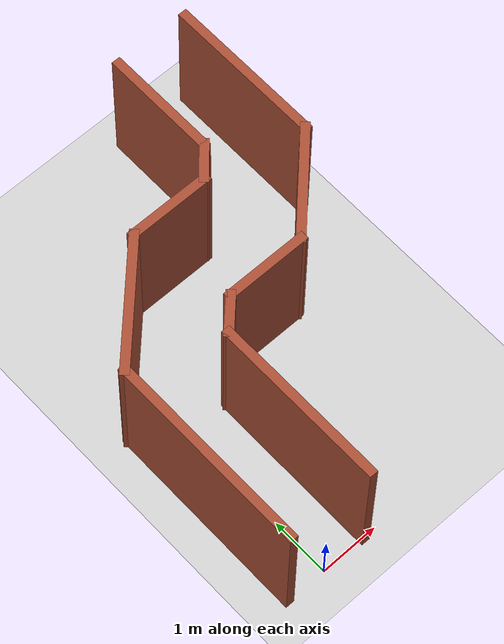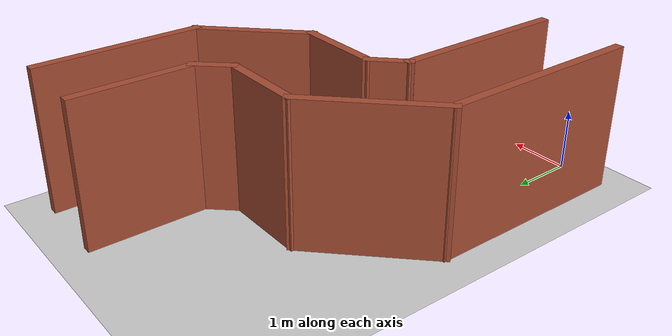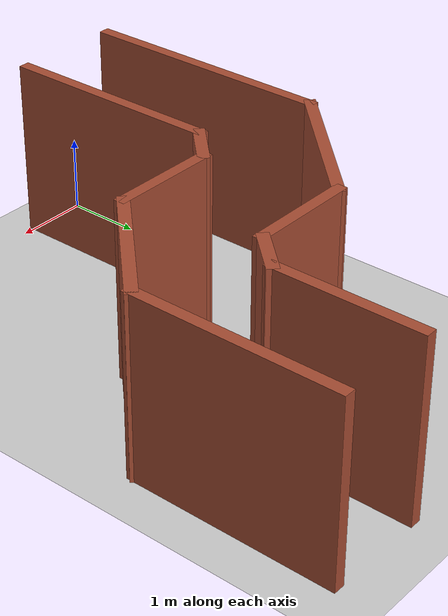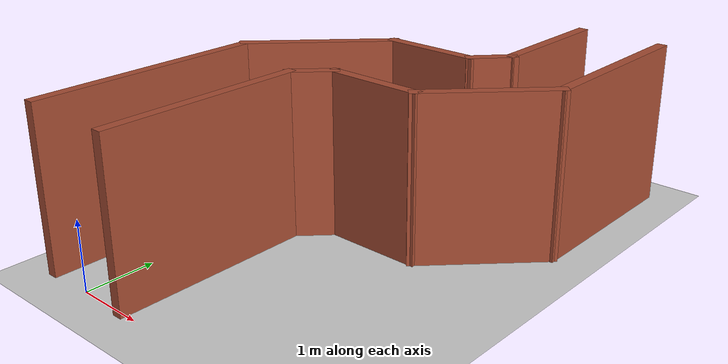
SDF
<sdf version="1.6">
 <world name="default">
  <light name="sun" type="directional">
   <pose>0 0 10 0 -0 0</pose>
   <diffuse>0.8 0.8 0.8 1</diffuse>
   <specular>0.1 0.1 0.1 1</specular>
   <attenuation>
    <range>1000</range>
    <constant>0.9</constant>
    <linear>0.01</linear>
    <quadratic>0.001</quadratic>
   </attenuation>
   <direction>-0.5 0.5 -1</direction>
  </light>
  <model name="ground_plane">
   <static>1</static>
   <link name="link">
    <collision name="collision">
     <geometry><plane><normal>0 0 1</normal><size>100 100</size></plane></geometry>
     <surface><friction><ode><mu>100</mu><mu2>50</mu2></ode></friction></surface>
    </collision>
    <visual name="visual">
     <cast_shadows>0</cast_shadows>
     <geometry><plane><normal>0 0 1</normal><size>100 100</size></plane></geometry>
     <material>
      <script><uri>file://media/materials/scripts/gazebo.material</uri><name>Gazebo/Grey</name></script>
     </material>
    </visual>
   </link>
  </model>
  <gravity>0 0 -9.8</gravity>
  <magnetic_field>6e-06 2.3e-05 -4.2e-05</magnetic_field>
  <atmosphere type="adiabatic"/>
  <physics name="default_physics" default="0" type="ode">
   <max_step_size>0.001</max_step_size>
   <real_time_factor>1</real_time_factor>
   <real_time_update_rate>1000</real_time_update_rate>
  </physics>
  <scene><ambient>0.4 0.4 0.4 1</ambient><background>0.7 0.7 0.7 1</background><shadows>1</shadows></scene>
  <spherical_coordinates>
   <surface_model>EARTH_WGS84</surface_model>
   <latitude_deg>0</latitude_deg>
   <longitude_deg>0</longitude_deg>
   <elevation>0</elevation>
   <heading_deg>0</heading_deg>
  </spherical_coordinates>
  <model name="NPath1">
   <pose>1.5647 3.60441 -0.132625 0 -0 0</pose>
   <link name="Wall_0">
    <collision name="Wall_0_Collision">
     <geometry><box><size>2 0.15 2.5</size></box></geometry>
     <pose>0 0 1.25 0 -0 0</pose>
    </collision>
    <visual name="Wall_0_Visual">
     <pose>0 0 1.25 0 -0 0</pose>
     <geometry><box><size>2 0.15 2.5</size></box></geometry>
     <material>
      <script><uri>file://media/materials/scripts/gazebo.material</uri><name>Gazebo/Bricks</name></script>
      <ambient>1 1 1 1</ambient>
     </material>
    </visual>
    <pose>0.987038 2.67996 0 0 0 -1.5708</pose>
   </link>
   <link name="Wall_1">
    <collision name="Wall_1_Collision">
     <geometry><box><size>0.73423 0.15 2.5</size></box></geometry>
     <pose>0 0 1.25 0 -0 0</pose>
    </collision>
    <visual name="Wall_1_Visual">
     <pose>0 0 1.25 0 -0 0</pose>
     <geometry><box><size>0.73423 0.15 2.5</size></box></geometry>
     <material>
      <script><uri>file://media/materials/scripts/gazebo.material</uri><name>Gazebo/Bricks</name></script>
      <ambient>1 1 1 1</ambient>
     </material>
    </visual>
    <pose>0.803635 1.54076 0 0 0 -2.31844</pose>
   </link>
   <link name="Wall_10">
    <collision name="Wall_10_Collision">
     <geometry><box><size>1.5 0.15 2.5</size></box></geometry>
     <pose>0 0 1.25 0 -0 0</pose>
    </collision>
    <visual name="Wall_10_Visual">
     <pose>0 0 1.25 0 -0 0</pose>
     <geometry><box><size>1.5 0.15 2.5</size></box></geometry>
     <material>
      <script><uri>file://media/materials/scripts/gazebo.material</uri><name>Gazebo/Bricks</name></script>
      <ambient>1 1 1 1</ambient>
     </material>
    </visual>
    <pose>0.291823 -0.330699 0 0 -0 3.14159</pose>
   </link>
   <link name="Wall_11">
    <collision name="Wall_11_Collision">
     <geometry><box><size>0.75 0.15 2.5</size></box></geometry>
     <pose>0 0 1.25 0 -0 0</pose>
    </collision>
    <visual name="Wall_11_Visual">
     <pose>0 0 1.25 0 -0 0</pose>
     <geometry><box><size>0.75 0.15 2.5</size></box></geometry>
     <material>
      <script><uri>file://media/materials/scripts/gazebo.material</uri><name>Gazebo/Bricks</name></script>
      <ambient>1 1 1 1</ambient>
     </material>
    </visual>
    <pose>-0.595309 -0.542831 0 0 0 -2.35619</pose>
   </link>
   <link name="Wall_12">
    <collision name="Wall_12_Collision">
     <geometry><box><size>3 0.15 2.5</size></box></geometry>
     <pose>0 0 1.25 0 -0 0</pose>
    </collision>
    <visual name="Wall_12_Visual">
     <pose>0 0 1.25 0 -0 0</pose>
     <geometry><box><size>3 0.15 2.5</size></box></geometry>
     <material>
      <script><uri>file://media/materials/scripts/gazebo.material</uri><name>Gazebo/Bricks</name></script>
      <ambient>1 1 1 1</ambient>
     </material>
    </visual>
    <pose>-0.807441 -2.17996 0 0 0 -1.5708</pose>
   </link>
   <link name="Wall_2">
    <collision name="Wall_2_Collision">
     <geometry><box><size>1.5 0.15 2.5</size></box></geometry>
     <pose>0 0 1.25 0 -0 0</pose>
    </collision>
    <visual name="Wall_2_Visual">
     <pose>0 0 1.25 0 -0 0</pose>
     <geometry><box><size>1.5 0.15 2.5</size></box></geometry>
     <material>
      <script><uri>file://media/materials/scripts/gazebo.material</uri><name>Gazebo/Bricks</name></script>
      <ambient>1 1 1 1</ambient>
     </material>
    </visual>
    <pose>-0.069978 1.31134 0 0 -0 3.14159</pose>
   </link>
   <link name="Wall_3">
    <collision name="Wall_3_Collision">
     <geometry><box><size>2.31791 0.15 2.5</size></box></geometry>
     <pose>0 0 1.25 0 -0 0</pose>
    </collision>
    <visual name="Wall_3_Visual">
     <pose>0 0 1.25 0 -0 0</pose>
     <geometry><box><size>2.31791 0.15 2.5</size></box></geometry>
     <material>
      <script><uri>file://media/materials/scripts/gazebo.material</uri><name>Gazebo/Bricks</name></script>
      <ambient>1 1 1 1</ambient>
     </material>
    </visual>
    <pose>-1.50997 0.543401 0 0 0 -2.35427</pose>
   </link>
   <link name="Wall_4">
    <collision name="Wall_4_Collision">
     <geometry><box><size>3.5 0.15 2.5</size></box></geometry>
     <pose>0 0 1.25 0 -0 0</pose>
    </collision>
    <visual name="Wall_4_Visual">
     <pose>0 0 1.25 0 -0 0</pose>
     <geometry><box><size>3.5 0.15 2.5</size></box></geometry>
     <material>
      <script><uri>file://media/materials/scripts/gazebo.material</uri><name>Gazebo/Bricks</name></script>
      <ambient>1 1 1 1</ambient>
     </material>
    </visual>
    <pose>-2.25976 -1.89954 0 0 0 -1.5708</pose>
   </link>
   <link name="Wall_8">
    <collision name="Wall_8_Collision">
     <geometry><box><size>2.75 0.15 2.5</size></box></geometry>
     <pose>0 0 1.25 0 -0 0</pose>
    </collision>
    <visual name="Wall_8_Visual">
     <pose>0 0 1.25 0 -0 0</pose>
     <geometry><box><size>2.75 0.15 2.5</size></box></geometry>
     <material>
      <script><uri>file://media/materials/scripts/gazebo.material</uri><name>Gazebo/Bricks</name></script>
      <ambient>1 1 1 1</ambient>
     </material>
    </visual>
    <pose>2.27497 2.27745 0 0 0 -1.5708</pose>
   </link>
   <link name="Wall_9">
    <collision name="Wall_9_Collision">
     <geometry><box><size>2 0.15 2.5</size></box></geometry>
     <pose>0 0 1.25 0 -0 0</pose>
    </collision>
    <visual name="Wall_9_Visual">
     <pose>0 0 1.25 0 -0 0</pose>
     <geometry><box><size>2 0.15 2.5</size></box></geometry>
     <material>
      <script><uri>file://media/materials/scripts/gazebo.material</uri><name>Gazebo/Bricks</name></script>
      <ambient>1 1 1 1</ambient>
     </material>
    </visual>
    <pose>1.6209 0.323375 0 0 0 -2.35619</pose>
   </link>
   <static>1</static>
  </model>
 </world>
</sdf>
